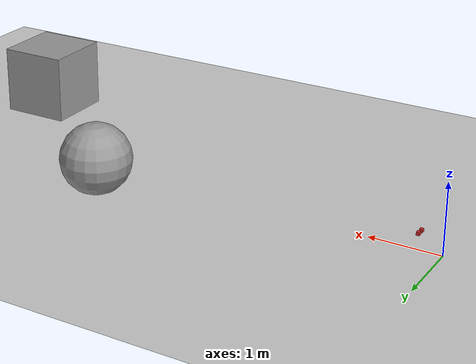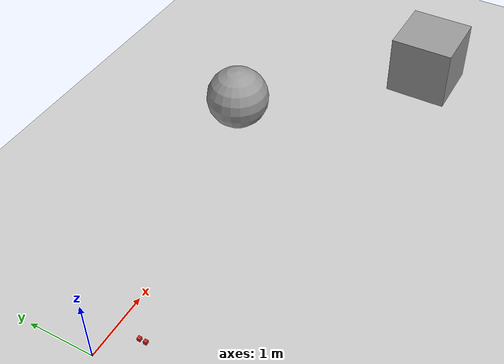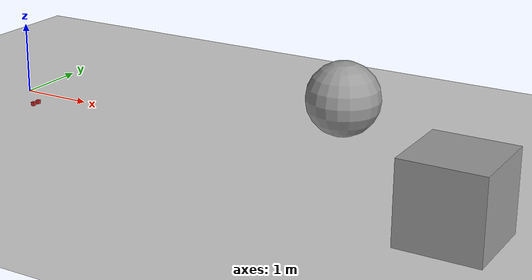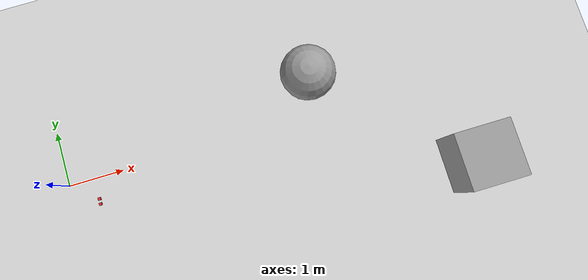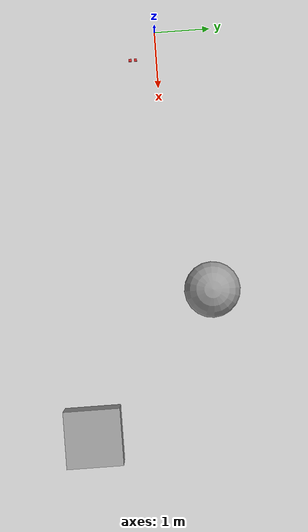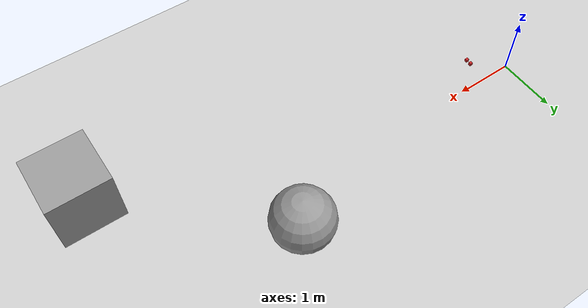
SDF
<sdf version="1.6">
 <world name="default">
  <light name="sun" type="directional">
   <pose>0 0 10 0 -0 0</pose>
   <diffuse>0.8 0.8 0.8 1</diffuse>
   <specular>0.2 0.2 0.2 1</specular>
   <attenuation>
    <range>1000</range>
    <constant>0.9</constant>
    <linear>0.01</linear>
    <quadratic>0.001</quadratic>
   </attenuation>
   <direction>-0.5 0.1 -0.9</direction>
  </light>
  <model name="ground_plane">
   <static>1</static>
   <link name="link">
    <collision name="collision">
     <geometry><plane><normal>0 0 1</normal><size>100 100</size></plane></geometry>
     <surface><friction><ode><mu>100</mu><mu2>50</mu2></ode></friction></surface>
    </collision>
    <visual name="visual">
     <cast_shadows>0</cast_shadows>
     <geometry><plane><normal>0 0 1</normal><size>100 100</size></plane></geometry>
     <material>
      <script><uri>file://media/materials/scripts/gazebo.material</uri><name>Gazebo/Grey</name></script>
     </material>
    </visual>
   </link>
  </model>
  <gravity>0 0 -9.8</gravity>
  <magnetic_field>6e-06 2.3e-05 -4.2e-05</magnetic_field>
  <atmosphere type="adiabatic"/>
  <physics name="default_physics" default="0" type="ode">
   <max_step_size>0.001</max_step_size>
   <real_time_factor>1</real_time_factor>
   <real_time_update_rate>1000</real_time_update_rate>
  </physics>
  <scene><ambient>0.4 0.4 0.4 1</ambient><background>0.7 0.7 0.7 1</background><shadows>1</shadows></scene>
  <spherical_coordinates>
   <surface_model>EARTH_WGS84</surface_model>
   <latitude_deg>0</latitude_deg>
   <longitude_deg>0</longitude_deg>
   <elevation>0</elevation>
   <heading_deg>0</heading_deg>
  </spherical_coordinates>
  <model name="Right">
   <link name="camera_link">
    <pose>0.05 0 0.9 0 -0 0</pose>
    <inertial>
     <mass>1e-05</mass>
     <inertia><ixx>1e-06</ixx><ixy>0</ixy><ixz>0</ixz><iyy>1e-06</iyy><iyz>0</iyz><izz>1e-06</izz></inertia>
    </inertial>
    <sensor name="Right" type="camera">
     <update_rate>30</update_rate>
     <camera name="head">
      <horizontal_fov>1.39626</horizontal_fov>
      <image><width>800</width><height>800</height><format>R8G8B8</format></image>
      <clip><near>0.02</near><far>300</far></clip>
      <noise><type>gaussian</type><mean>0</mean><stddev>0.007</stddev></noise>
     </camera>
     <plugin name="camera_controller" filename="libgazebo_ros_camera.so">
      <alwaysOn>true</alwaysOn>
      <updateRate>0.0</updateRate>
      <cameraName>Camera/Right</cameraName>
      <imageTopicName>image_raw</imageTopicName>
      <cameraInfoTopicName>camera_info</cameraInfoTopicName>
      <frameName>camera_link_optical</frameName>
      <hackBaseline>0.0</hackBaseline>
      <distortionK1>0.0</distortionK1>
      <distortionK2>0.0</distortionK2>
      <distortionK3>0.0</distortionK3>
      <distortionT1>0.0</distortionT1>
      <distortionT2>0.0</distortionT2>
      <CxPrime>0</CxPrime>
      <Cx>0.0</Cx>
      <Cy>0.0</Cy>
      <focalLength>0.0</focalLength>
      <robotNamespace>/</robotNamespace>
     </plugin>
    </sensor>
    <visual name="camera_link_visual">
     <geometry><box><size>0.05 0.05 0.05</size></box></geometry>
     <material>
      <script><name>Gazebo/Red</name><uri>file://media/materials/scripts/gazebo.material</uri></script>
      <shader type="pixel"><normal_map>__default__</normal_map></shader>
      <ambient>1 0 0 1</ambient>
      <diffuse>1 0 0 1</diffuse>
      <specular>0.1 0.1 0.1 1</specular>
      <emissive>0 0 0 1</emissive>
     </material>
    </visual>
    <collision name="camera_link_collision">
     <geometry><box><size>0.05 0.05 0.05</size></box></geometry>
     <surface>
      <friction>
       <ode><mu>0.2</mu><mu2>0.2</mu2><fdir1>0 0 0</fdir1><slip1>0</slip1><slip2>0</slip2></ode>
       <torsional>
        <coefficient>1</coefficient>
        <patch_radius>0</patch_radius>
        <surface_radius>0</surface_radius>
        <use_patch_radius>1</use_patch_radius>
        <ode><slip>0</slip></ode>
       </torsional>
      </friction>
      <bounce><restitution_coefficient>0</restitution_coefficient><threshold>1e+06</threshold></bounce>
      <contact>
       <collide_without_contact>0</collide_without_contact>
       <collide_without_contact_bitmask>1</collide_without_contact_bitmask>
       <collide_bitmask>1</collide_bitmask>
       <ode>
        <soft_cfm>0</soft_cfm>
        <soft_erp>0.2</soft_erp>
        <kp>1e+13</kp>
        <kd>1</kd>
        <max_vel>0.01</max_vel>
        <min_depth>0</min_depth>
       </ode>
       <bullet>
        <split_impulse>1</split_impulse>
        <split_impulse_penetration_threshold>-0.01</split_impulse_penetration_threshold>
        <soft_cfm>0</soft_cfm>
        <soft_erp>0.2</soft_erp>
        <kp>1e+13</kp>
        <kd>1</kd>
       </bullet>
      </contact>
     </surface>
    </collision>
   </link>
   <static>0</static>
   <pose>0.419939 -0.471299 -0.875 0 -0 2e-05</pose>
  </model>
  <model name="Left">
   <link name="camera_link">
    <pose>0.05 0 0.9 0 -0 0</pose>
    <inertial>
     <mass>1e-05</mass>
     <inertia><ixx>1e-06</ixx><ixy>0</ixy><ixz>0</ixz><iyy>1e-06</iyy><iyz>0</iyz><izz>1e-06</izz></inertia>
    </inertial>
    <sensor name="Left" type="camera">
     <update_rate>30</update_rate>
     <camera name="head">
      <horizontal_fov>1.39626</horizontal_fov>
      <image><width>800</width><height>800</height><format>R8G8B8</format></image>
      <clip><near>0.02</near><far>300</far></clip>
      <noise><type>gaussian</type><mean>0</mean><stddev>0.007</stddev></noise>
     </camera>
     <plugin name="camera_controller" filename="libgazebo_ros_camera.so">
      <alwaysOn>true</alwaysOn>
      <updateRate>0.0</updateRate>
      <cameraName>Camera/left</cameraName>
      <imageTopicName>image_raw</imageTopicName>
      <cameraInfoTopicName>camera_info</cameraInfoTopicName>
      <frameName>camera_link_optical</frameName>
      <hackBaseline>0.0</hackBaseline>
      <distortionK1>0.0</distortionK1>
      <distortionK2>0.0</distortionK2>
      <distortionK3>0.0</distortionK3>
      <distortionT1>0.0</distortionT1>
      <distortionT2>0.0</distortionT2>
      <CxPrime>0</CxPrime>
      <Cx>0.0</Cx>
      <Cy>0.0</Cy>
      <focalLength>0.0</focalLength>
      <robotNamespace>/</robotNamespace>
     </plugin>
    </sensor>
    <visual name="camera_link_visual">
     <geometry><box><size>0.05 0.05 0.05</size></box></geometry>
     <material>
      <script><name>Gazebo/Red</name><uri>file://media/materials/scripts/gazebo.material</uri></script>
      <shader type="pixel"><normal_map>__default__</normal_map></shader>
      <ambient>1 0 0 1</ambient>
      <diffuse>1 0 0 1</diffuse>
      <specular>0.1 0.1 0.1 1</specular>
      <emissive>0 0 0 1</emissive>
     </material>
    </visual>
    <collision name="camera_link_collision">
     <geometry><box><size>0.05 0.05 0.05</size></box></geometry>
     <surface>
      <friction>
       <ode><mu>0.2</mu><mu2>0.2</mu2><fdir1>0 0 0</fdir1><slip1>0</slip1><slip2>0</slip2></ode>
       <torsional>
        <coefficient>1</coefficient>
        <patch_radius>0</patch_radius>
        <surface_radius>0</surface_radius>
        <use_patch_radius>1</use_patch_radius>
        <ode><slip>0</slip></ode>
       </torsional>
      </friction>
      <bounce><restitution_coefficient>0</restitution_coefficient><threshold>1e+06</threshold></bounce>
      <contact>
       <collide_without_contact>0</collide_without_contact>
       <collide_without_contact_bitmask>1</collide_without_contact_bitmask>
       <collide_bitmask>1</collide_bitmask>
       <ode>
        <soft_cfm>0</soft_cfm>
        <soft_erp>0.2</soft_erp>
        <kp>1e+13</kp>
        <kd>1</kd>
        <max_vel>0.01</max_vel>
        <min_depth>0</min_depth>
       </ode>
       <bullet>
        <split_impulse>1</split_impulse>
        <split_impulse_penetration_threshold>-0.01</split_impulse_penetration_threshold>
        <soft_cfm>0</soft_cfm>
        <soft_erp>0.2</soft_erp>
        <kp>1e+13</kp>
        <kd>1</kd>
       </bullet>
      </contact>
     </surface>
    </collision>
   </link>
   <static>0</static>
   <pose>0.421279 -0.373985 -0.875 -3e-06 2e-06 -1e-06</pose>
  </model>
  <model name="unit_sphere">
   <pose>4.70193 0.685744 0.5 0 -0 0</pose>
   <link name="link">
    <inertial>
     <mass>1</mass>
     <inertia><ixx>0.1</ixx><ixy>0</ixy><ixz>0</ixz><iyy>0.1</iyy><iyz>0</iyz><izz>0.1</izz></inertia>
    </inertial>
    <collision name="collision"><geometry><sphere><radius>0.5</radius></sphere></geometry></collision>
    <visual name="visual">
     <geometry><sphere><radius>0.5</radius></sphere></geometry>
     <material>
      <script><name>Gazebo/Grey</name><uri>file://media/materials/scripts/gazebo.material</uri></script>
     </material>
    </visual>
   </link>
  </model>
  <model name="unit_box">
   <pose>7.1433 -1.59797 0.499995 1e-05 -0 0</pose>
   <link name="link">
    <inertial>
     <mass>1</mass>
     <inertia>
      <ixx>0.166667</ixx>
      <ixy>0</ixy>
      <ixz>0</ixz>
      <iyy>0.166667</iyy>
      <iyz>0</iyz>
      <izz>0.166667</izz>
     </inertia>
    </inertial>
    <collision name="collision"><geometry><box><size>1 1 1</size></box></geometry></collision>
    <visual name="visual">
     <geometry><box><size>1 1 1</size></box></geometry>
     <material>
      <script><name>Gazebo/Grey</name><uri>file://media/materials/scripts/gazebo.material</uri></script>
     </material>
    </visual>
   </link>
  </model>
 </world>
</sdf>
